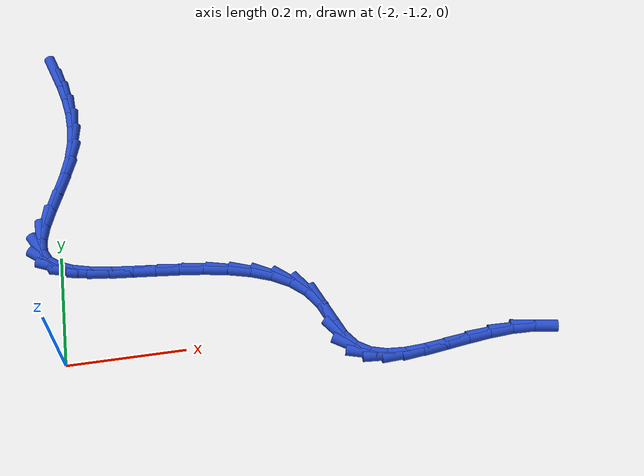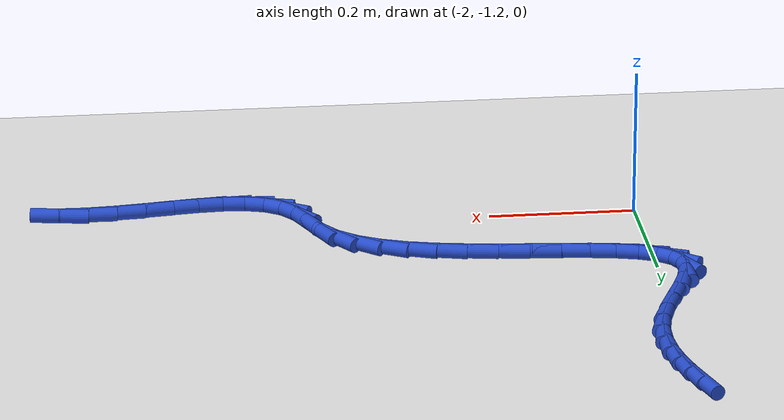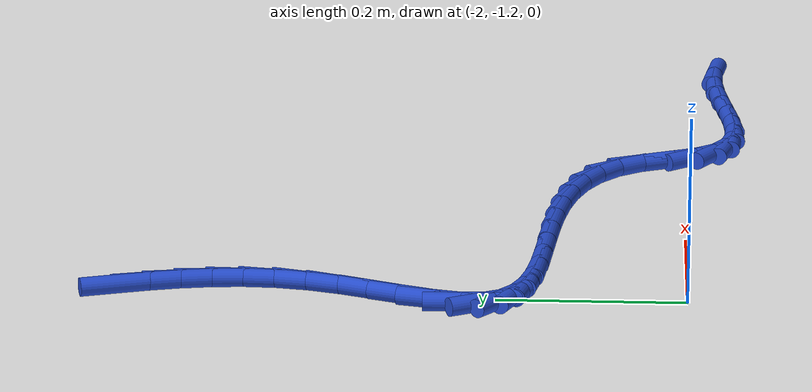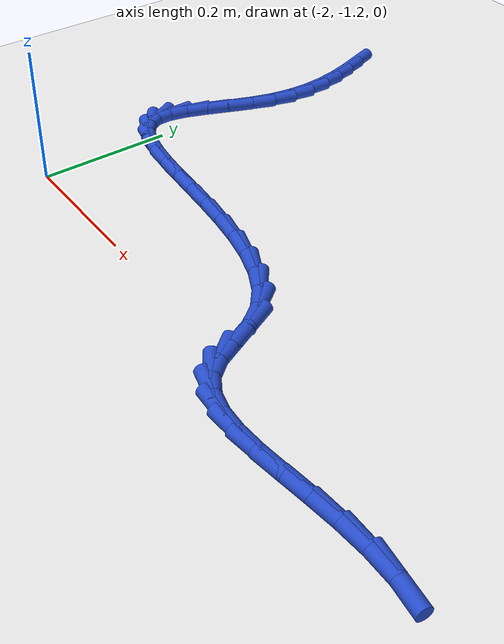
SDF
<sdf version="1.6">
 <world name="default">
  <model name="ground_plane">
   <static>1</static>
   <link name="link">
    <collision name="collision">
     <geometry><plane><normal>0 0 1</normal><size>100 100</size></plane></geometry>
     <surface><friction><ode><mu>100</mu><mu2>50</mu2></ode></friction></surface>
    </collision>
    <visual name="visual">
     <cast_shadows>0</cast_shadows>
     <geometry><plane><normal>0 0 1</normal><size>100 100</size></plane></geometry>
     <material>
      <script><uri>file://media/materials/scripts/gazebo.material</uri><name>Gazebo/WhiteGlow</name></script>
     </material>
    </visual>
   </link>
  </model>
  <model name="line">
   <link name="link_139">
    <pose>-1.994718695074232 -0.6045832659254015 0.01 0 1.57 -1.2638285182889089</pose>
    <collision name="collision">
     <geometry><cylinder><radius>0.01</radius><length>0.08</length></cylinder></geometry>
    </collision>
    <visual name="visual">
     <material>
      <script><name>Gazebo/Blue</name><uri>file://media/materials/scripts/gazebo.material</uri></script>
     </material>
     <geometry><cylinder><radius>0.01</radius><length>0.08</length></cylinder></geometry>
    </visual>
   </link>
   <link name="link_140">
    <pose>-1.9846347402739761 -0.6363951118050964 0.01 0 1.57 -1.3247210941942575</pose>
    <collision name="collision">
     <geometry><cylinder><radius>0.01</radius><length>0.08</length></cylinder></geometry>
    </collision>
    <visual name="visual">
     <material>
      <script><name>Gazebo/Blue</name><uri>file://media/materials/scripts/gazebo.material</uri></script>
     </material>
     <geometry><cylinder><radius>0.01</radius><length>0.08</length></cylinder></geometry>
    </visual>
   </link>
   <link name="link_141">
    <pose>-1.9765461381328853 -0.6685993936654409 0.01 0 1.57 -1.4044721889342202</pose>
    <collision name="collision">
     <geometry><cylinder><radius>0.01</radius><length>0.08</length></cylinder></geometry>
    </collision>
    <visual name="visual">
     <material>
      <script><name>Gazebo/Blue</name><uri>file://media/materials/scripts/gazebo.material</uri></script>
     </material>
     <geometry><cylinder><radius>0.01</radius><length>0.08</length></cylinder></geometry>
    </visual>
   </link>
   <link name="link_142">
    <pose>-1.9710621300545366 -0.7012666017261205 0.01 0 1.57 -1.5025251873658423</pose>
    <collision name="collision">
     <geometry><cylinder><radius>0.01</radius><length>0.08</length></cylinder></geometry>
    </collision>
    <visual name="visual">
     <material>
      <script><name>Gazebo/Blue</name><uri>file://media/materials/scripts/gazebo.material</uri></script>
     </material>
     <geometry><cylinder><radius>0.01</radius><length>0.08</length></cylinder></geometry>
    </visual>
   </link>
   <link name="link_143">
    <pose>-1.968791957442508 -0.7344672262068215 0.01 0 1.57 1.5248908450566914</pose>
    <collision name="collision">
     <geometry><cylinder><radius>0.01</radius><length>0.08</length></cylinder></geometry>
    </collision>
    <visual name="visual">
     <material>
      <script><name>Gazebo/Blue</name><uri>file://media/materials/scripts/gazebo.material</uri></script>
     </material>
     <geometry><cylinder><radius>0.01</radius><length>0.08</length></cylinder></geometry>
    </visual>
   </link>
   <link name="link_144">
    <pose>-1.9703448617003763 -0.7682717573272285 0.01 0 1.57 1.3989183732055366</pose>
    <collision name="collision">
     <geometry><cylinder><radius>0.01</radius><length>0.08</length></cylinder></geometry>
    </collision>
    <visual name="visual">
     <material>
      <script><name>Gazebo/Blue</name><uri>file://media/materials/scripts/gazebo.material</uri></script>
     </material>
     <geometry><cylinder><radius>0.01</radius><length>0.08</length></cylinder></geometry>
    </visual>
   </link>
   <link name="link_145">
    <pose>-1.9763300842317197 -0.8027506853070274 0.01 0 1.57 1.2754668063858623</pose>
    <collision name="collision">
     <geometry><cylinder><radius>0.01</radius><length>0.08</length></cylinder></geometry>
    </collision>
    <visual name="visual">
     <material>
      <script><name>Gazebo/Blue</name><uri>file://media/materials/scripts/gazebo.material</uri></script>
     </material>
     <geometry><cylinder><radius>0.01</radius><length>0.08</length></cylinder></geometry>
    </visual>
   </link>
   <link name="link_146">
    <pose>-1.9870073456691102 -0.8378471410057455 0.01 0 1.57 1.2003949216007275</pose>
    <collision name="collision">
     <geometry><cylinder><radius>0.01</radius><length>0.08</length></cylinder></geometry>
    </collision>
    <visual name="visual">
     <material>
      <script><name>Gazebo/Blue</name><uri>file://media/materials/scripts/gazebo.material</uri></script>
     </material>
     <geometry><cylinder><radius>0.01</radius><length>0.08</length></cylinder></geometry>
    </visual>
   </link>
   <link name="link_147">
    <pose>-2.000560106867085 -0.8727477019138784 0.01 0 1.57 1.1800004360550909</pose>
    <collision name="collision">
     <geometry><cylinder><radius>0.01</radius><length>0.08</length></cylinder></geometry>
    </collision>
    <visual name="visual">
     <material>
      <script><name>Gazebo/Blue</name><uri>file://media/materials/scripts/gazebo.material</uri></script>
     </material>
     <geometry><cylinder><radius>0.01</radius><length>0.08</length></cylinder></geometry>
    </visual>
   </link>
   <link name="link_148">
    <pose>-2.014408170041273 -0.9063606814423606 0.01 0 1.57 1.216256721388813</pose>
    <collision name="collision">
     <geometry><cylinder><radius>0.01</radius><length>0.08</length></cylinder></geometry>
    </collision>
    <visual name="visual">
     <material>
      <script><name>Gazebo/Blue</name><uri>file://media/materials/scripts/gazebo.material</uri></script>
     </material>
     <geometry><cylinder><radius>0.01</radius><length>0.08</length></cylinder></geometry>
    </visual>
   </link>
   <link name="link_149">
    <pose>-2.0259701544893813 -0.9375939619671745 0.01 0 1.57 1.334169436858418</pose>
    <collision name="collision">
     <geometry><cylinder><radius>0.01</radius><length>0.08</length></cylinder></geometry>
    </collision>
    <visual name="visual">
     <material>
      <script><name>Gazebo/Blue</name><uri>file://media/materials/scripts/gazebo.material</uri></script>
     </material>
     <geometry><cylinder><radius>0.01</radius><length>0.08</length></cylinder></geometry>
    </visual>
   </link>
   <link name="link_150">
    <pose>-2.0326646795091134 -0.9653554258643011 0.01 0 1.57 -1.5387785591311554</pose>
    <collision name="collision">
     <geometry><cylinder><radius>0.01</radius><length>0.08</length></cylinder></geometry>
    </collision>
    <visual name="visual">
     <material>
      <script><name>Gazebo/Blue</name><uri>file://media/materials/scripts/gazebo.material</uri></script>
     </material>
     <geometry><cylinder><radius>0.01</radius><length>0.08</length></cylinder></geometry>
    </visual>
   </link>
   <link name="link_151">
    <pose>-2.031921512238467 -0.9885585832973549 0.01 0 1.57 -1.0864905053423166</pose>
    <collision name="collision">
     <geometry><cylinder><radius>0.01</radius><length>0.08</length></cylinder></geometry>
    </collision>
    <visual name="visual">
     <material>
      <script><name>Gazebo/Blue</name><uri>file://media/materials/scripts/gazebo.material</uri></script>
     </material>
     <geometry><cylinder><radius>0.01</radius><length>0.08</length></cylinder></geometry>
    </visual>
   </link>
   <link name="link_152">
    <pose>-2.022366469250198 -1.0067207485786585 0.01 0 1.57 -0.6668452232454736</pose>
    <collision name="collision">
     <geometry><cylinder><radius>0.01</radius><length>0.08</length></cylinder></geometry>
    </collision>
    <visual name="visual">
     <material>
      <script><name>Gazebo/Blue</name><uri>file://media/materials/scripts/gazebo.material</uri></script>
     </material>
     <geometry><cylinder><radius>0.01</radius><length>0.08</length></cylinder></geometry>
    </visual>
   </link>
   <link name="link_153">
    <pose>-2.004870295108516 -1.0204925477344142 0.01 0 1.57 -0.3956296709270102</pose>
    <collision name="collision">
     <geometry><cylinder><radius>0.01</radius><length>0.08</length></cylinder></geometry>
    </collision>
    <visual name="visual">
     <material>
      <script><name>Gazebo/Blue</name><uri>file://media/materials/scripts/gazebo.material</uri></script>
     </material>
     <geometry><cylinder><radius>0.01</radius><length>0.08</length></cylinder></geometry>
    </visual>
   </link>
   <link name="link_154">
    <pose>-1.9805511027022613 -1.030649486261798 0.01 0 1.57 -0.23906286458943077</pose>
    <collision name="collision">
     <geometry><cylinder><radius>0.01</radius><length>0.08</length></cylinder></geometry>
    </collision>
    <visual name="visual">
     <material>
      <script><name>Gazebo/Blue</name><uri>file://media/materials/scripts/gazebo.material</uri></script>
     </material>
     <geometry><cylinder><radius>0.01</radius><length>0.08</length></cylinder></geometry>
    </visual>
   </link>
   <link name="link_155">
    <pose>-1.9505270049202705 -1.0379670696579861 0.01 0 1.57 -0.150644241382176</pose>
    <collision name="collision">
     <geometry><cylinder><radius>0.01</radius><length>0.08</length></cylinder></geometry>
    </collision>
    <visual name="visual">
     <material>
      <script><name>Gazebo/Blue</name><uri>file://media/materials/scripts/gazebo.material</uri></script>
     </material>
     <geometry><cylinder><radius>0.01</radius><length>0.08</length></cylinder></geometry>
    </visual>
   </link>
   <link name="link_156">
    <pose>-1.915916114651385 -1.0432208034201533 0.01 0 1.57 -0.1037603282049515</pose>
    <collision name="collision">
     <geometry><cylinder><radius>0.01</radius><length>0.08</length></cylinder></geometry>
    </collision>
    <visual name="visual">
     <material>
      <script><name>Gazebo/Blue</name><uri>file://media/materials/scripts/gazebo.material</uri></script>
     </material>
     <geometry><cylinder><radius>0.01</radius><length>0.08</length></cylinder></geometry>
    </visual>
   </link>
   <link name="link_157">
    <pose>-1.8778365447844438 -1.0471861930454762 0.01 0 1.57 -0.08518880617954801</pose>
    <collision name="collision">
     <geometry><cylinder><radius>0.01</radius><length>0.08</length></cylinder></geometry>
    </collision>
    <visual name="visual">
     <material>
      <script><name>Gazebo/Blue</name><uri>file://media/materials/scripts/gazebo.material</uri></script>
     </material>
     <geometry><cylinder><radius>0.01</radius><length>0.08</length></cylinder></geometry>
    </visual>
   </link>
   <link name="link_158">
    <pose>-1.8374064082082862 -1.0506387440311304 0.01 0 1.57 -0.0889387033324823</pose>
    <collision name="collision">
     <geometry><cylinder><radius>0.01</radius><length>0.08</length></cylinder></geometry>
    </collision>
    <visual name="visual">
     <material>
      <script><name>Gazebo/Blue</name><uri>file://media/materials/scripts/gazebo.material</uri></script>
     </material>
     <geometry><cylinder><radius>0.01</radius><length>0.08</length></cylinder></geometry>
    </visual>
   </link>
   <link name="link_159">
    <pose>-1.7957438178117504 -1.0543539618742908 0.01 0 1.57 -0.11329304329400175</pose>
    <collision name="collision">
     <geometry><cylinder><radius>0.01</radius><length>0.08</length></cylinder></geometry>
    </collision>
    <visual name="visual">
     <material>
      <script><name>Gazebo/Blue</name><uri>file://media/materials/scripts/gazebo.material</uri></script>
     </material>
     <geometry><cylinder><radius>0.01</radius><length>0.08</length></cylinder></geometry>
    </visual>
   </link>
   <link name="link_160">
    <pose>-1.7539668864836768 -1.0591073520721341 0.01 0 1.57 -0.15969205083930604</pose>
    <collision name="collision">
     <geometry><cylinder><radius>0.01</radius><length>0.08</length></cylinder></geometry>
    </collision>
    <visual name="visual">
     <material>
      <script><name>Gazebo/Blue</name><uri>file://media/materials/scripts/gazebo.material</uri></script>
     </material>
     <geometry><cylinder><radius>0.01</radius><length>0.08</length></cylinder></geometry>
    </visual>
   </link>
   <link name="link_161">
    <pose>-1.713193727112903 -1.0656744201218358 0.01 0 1.57 -0.23260599070406762</pose>
    <collision name="collision">
     <geometry><cylinder><radius>0.01</radius><length>0.08</length></cylinder></geometry>
    </collision>
    <visual name="visual">
     <material>
      <script><name>Gazebo/Blue</name><uri>file://media/materials/scripts/gazebo.material</uri></script>
     </material>
     <geometry><cylinder><radius>0.01</radius><length>0.08</length></cylinder></geometry>
    </visual>
   </link>
   <link name="link_162">
    <pose>-1.6745424525882688 -1.0748306715205715 0.01 0 1.57 -0.3398661094107984</pose>
    <collision name="collision">
     <geometry><cylinder><radius>0.01</radius><length>0.08</length></cylinder></geometry>
    </collision>
    <visual name="visual">
     <material>
      <script><name>Gazebo/Blue</name><uri>file://media/materials/scripts/gazebo.material</uri></script>
     </material>
     <geometry><cylinder><radius>0.01</radius><length>0.08</length></cylinder></geometry>
    </visual>
   </link>
   <link name="link_163">
    <pose>-1.639131175798615 -1.0873516117655169 0.01 0 1.57 -0.4924472609180442</pose>
    <collision name="collision">
     <geometry><cylinder><radius>0.01</radius><length>0.08</length></cylinder></geometry>
    </collision>
    <visual name="visual">
     <material>
      <script><name>Gazebo/Blue</name><uri>file://media/materials/scripts/gazebo.material</uri></script>
     </material>
     <geometry><cylinder><radius>0.01</radius><length>0.08</length></cylinder></geometry>
    </visual>
   </link>
   <link name="link_164">
    <pose>-1.6080780096327794 -1.1040127463538476 0.01 0 1.57 -0.7007696492828591</pose>
    <collision name="collision">
     <geometry><cylinder><radius>0.01</radius><length>0.08</length></cylinder></geometry>
    </collision>
    <visual name="visual">
     <material>
      <script><name>Gazebo/Blue</name><uri>file://media/materials/scripts/gazebo.material</uri></script>
     </material>
     <geometry><cylinder><radius>0.01</radius><length>0.08</length></cylinder></geometry>
    </visual>
   </link>
   <link name="link_165">
    <pose>-1.5825010669796007 -1.1255895807827394 0.01 0 1.57 -0.9615068926539001</pose>
    <collision name="collision">
     <geometry><cylinder><radius>0.01</radius><length>0.08</length></cylinder></geometry>
    </collision>
    <visual name="visual">
     <material>
      <script><name>Gazebo/Blue</name><uri>file://media/materials/scripts/gazebo.material</uri></script>
     </material>
     <geometry><cylinder><radius>0.01</radius><length>0.08</length></cylinder></geometry>
    </visual>
   </link>
   <link name="link_166">
    <pose>-1.5634919056065013 -1.1528287327020912 0.01 0 1.57 -1.1628254636695046</pose>
    <collision name="collision">
     <geometry><cylinder><radius>0.01</radius><length>0.08</length></cylinder></geometry>
    </collision>
    <visual name="visual">
     <material>
      <script><name>Gazebo/Blue</name><uri>file://media/materials/scripts/gazebo.material</uri></script>
     </material>
     <geometry><cylinder><radius>0.01</radius><length>0.08</length></cylinder></geometry>
    </visual>
   </link>
   <link name="link_167">
    <pose>-1.549969857122324 -1.1841137751146882 0.01 0 1.57 -1.1612026939479012</pose>
    <collision name="collision">
     <geometry><cylinder><radius>0.01</radius><length>0.08</length></cylinder></geometry>
    </collision>
    <visual name="visual">
     <material>
      <script><name>Gazebo/Blue</name><uri>file://media/materials/scripts/gazebo.material</uri></script>
     </material>
     <geometry><cylinder><radius>0.01</radius><length>0.08</length></cylinder></geometry>
    </visual>
   </link>
   <link name="link_168">
    <pose>-1.5371039712197252 -1.213748556832437 0.01 0 1.57 -0.9208520627309478</pose>
    <collision name="collision">
     <geometry><cylinder><radius>0.01</radius><length>0.08</length></cylinder></geometry>
    </collision>
    <visual name="visual">
     <material>
      <script><name>Gazebo/Blue</name><uri>file://media/materials/scripts/gazebo.material</uri></script>
     </material>
     <geometry><cylinder><radius>0.01</radius><length>0.08</length></cylinder></geometry>
    </visual>
   </link>
   <link name="link_169">
    <pose>-1.5200873272975335 -1.2361354473885393 0.01 0 1.57 -0.5634580957225387</pose>
    <collision name="collision">
     <geometry><cylinder><radius>0.01</radius><length>0.08</length></cylinder></geometry>
    </collision>
    <visual name="visual">
     <material>
      <script><name>Gazebo/Blue</name><uri>file://media/materials/scripts/gazebo.material</uri></script>
     </material>
     <geometry><cylinder><radius>0.01</radius><length>0.08</length></cylinder></geometry>
    </visual>
   </link>
   <link name="link_170">
    <pose>-1.497723515450446 -1.2502643977526515 0.01 0 1.57 -0.2647688374998364</pose>
    <collision name="collision">
     <geometry><cylinder><radius>0.01</radius><length>0.08</length></cylinder></geometry>
    </collision>
    <visual name="visual">
     <material>
      <script><name>Gazebo/Blue</name><uri>file://media/materials/scripts/gazebo.material</uri></script>
     </material>
     <geometry><cylinder><radius>0.01</radius><length>0.08</length></cylinder></geometry>
    </visual>
   </link>
   <link name="link_171">
    <pose>-1.470746932117424 -1.25757867702265 0.01 0 1.57 -0.06367020355407137</pose>
    <collision name="collision">
     <geometry><cylinder><radius>0.01</radius><length>0.08</length></cylinder></geometry>
    </collision>
    <visual name="visual">
     <material>
      <script><name>Gazebo/Blue</name><uri>file://media/materials/scripts/gazebo.material</uri></script>
     </material>
     <geometry><cylinder><radius>0.01</radius><length>0.08</length></cylinder></geometry>
    </visual>
   </link>
   <link name="link_172">
    <pose>-1.4399102018994314 -1.259544715335026 0.01 0 1.57 0.05637897786919826</pose>
    <collision name="collision">
     <geometry><cylinder><radius>0.01</radius><length>0.08</length></cylinder></geometry>
    </collision>
    <visual name="visual">
     <material>
      <script><name>Gazebo/Blue</name><uri>file://media/materials/scripts/gazebo.material</uri></script>
     </material>
     <geometry><cylinder><radius>0.01</radius><length>0.08</length></cylinder></geometry>
    </visual>
   </link>
   <link name="link_173">
    <pose>-1.4059659493974328 -1.2576289428262681 0.01 0 1.57 0.11875685725038784</pose>
    <collision name="collision">
     <geometry><cylinder><radius>0.01</radius><length>0.08</length></cylinder></geometry>
    </collision>
    <visual name="visual">
     <material>
      <script><name>Gazebo/Blue</name><uri>file://media/materials/scripts/gazebo.material</uri></script>
     </material>
     <geometry><cylinder><radius>0.01</radius><length>0.08</length></cylinder></geometry>
    </visual>
   </link>
   <link name="link_174">
    <pose>-1.3696667992123932 -1.2532977896328663 0.01 0 1.57 0.13842060294302166</pose>
    <collision name="collision">
     <geometry><cylinder><radius>0.01</radius><length>0.08</length></cylinder></geometry>
    </collision>
    <visual name="visual">
     <material>
      <script><name>Gazebo/Blue</name><uri>file://media/materials/scripts/gazebo.material</uri></script>
     </material>
     <geometry><cylinder><radius>0.01</radius><length>0.08</length></cylinder></geometry>
    </visual>
   </link>
   <link name="link_175">
    <pose>-1.3317653759452774 -1.248017685891311 0.01 0 1.57 0.12228975604315402</pose>
    <collision name="collision">
     <geometry><cylinder><radius>0.01</radius><length>0.08</length></cylinder></geometry>
    </collision>
    <visual name="visual">
     <material>
      <script><name>Gazebo/Blue</name><uri>file://media/materials/scripts/gazebo.material</uri></script>
     </material>
     <geometry><cylinder><radius>0.01</radius><length>0.08</length></cylinder></geometry>
    </visual>
   </link>
   <link name="link_176">
    <pose>-1.2930143041970503 -1.2432550617380906 0.01 0 1.57 0.07140607663292801</pose>
    <collision name="collision">
     <geometry><cylinder><radius>0.01</radius><length>0.08</length></cylinder></geometry>
    </collision>
    <visual name="visual">
     <material>
      <script><name>Gazebo/Blue</name><uri>file://media/materials/scripts/gazebo.material</uri></script>
     </material>
     <geometry><cylinder><radius>0.01</radius><length>0.08</length></cylinder></geometry>
    </visual>
   </link>
   <link name="link_177">
    <pose>-1.2541662085686747 -1.2404763473096954 0.01 0 1.57 -0.01758346020161479</pose>
    <collision name="collision">
     <geometry><cylinder><radius>0.01</radius><length>0.08</length></cylinder></geometry>
    </collision>
    <visual name="visual">
     <material>
      <script><name>Gazebo/Blue</name><uri>file://media/materials/scripts/gazebo.material</uri></script>
     </material>
     <geometry><cylinder><radius>0.01</radius><length>0.08</length></cylinder></geometry>
    </visual>
   </link>
   <link name="link_178">
    <pose>-1.2159737136611184 -1.2411479727426151 0.01 0 1.57 -0.1486029345550301</pose>
    <collision name="collision">
     <geometry><cylinder><radius>0.01</radius><length>0.08</length></cylinder></geometry>
    </collision>
    <visual name="visual">
     <material>
      <script><name>Gazebo/Blue</name><uri>file://media/materials/scripts/gazebo.material</uri></script>
     </material>
     <geometry><cylinder><radius>0.01</radius><length>0.08</length></cylinder></geometry>
    </visual>
   </link>
  </model>
 </world>
</sdf>
